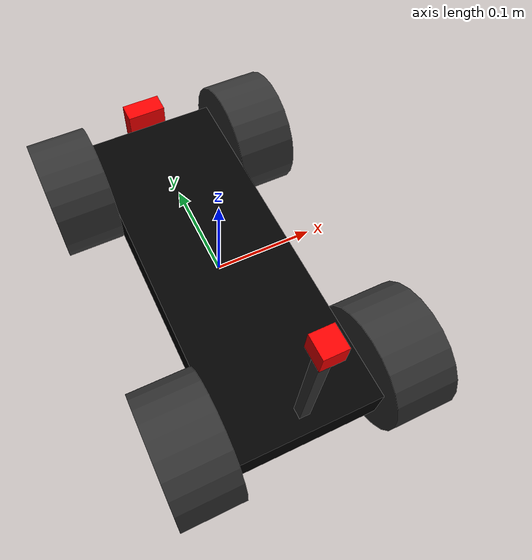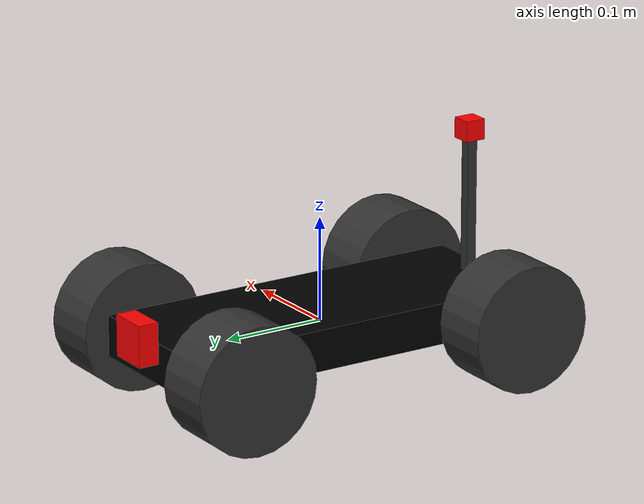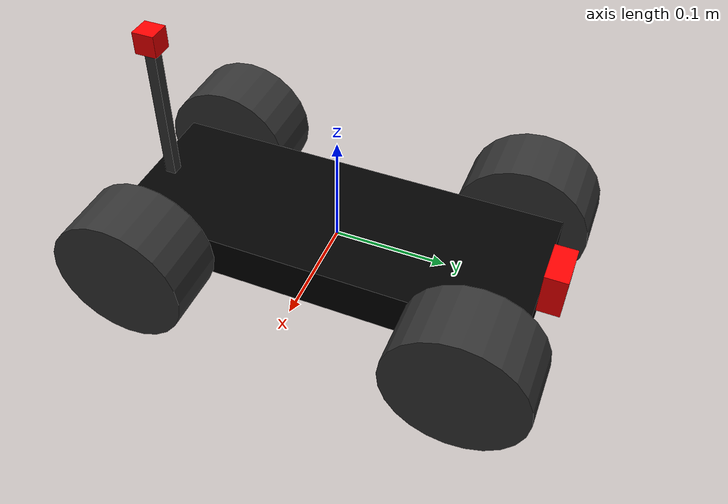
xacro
<?xml version="1.0"?>
<robot name="four_wheel" xmlns:xacro="http://www.ros.org/wiki/xacro">

  <xacro:property name="PI" value="3.1416"/>
  <material name="black">
    <color rgba="0 0 0 1"/>
  </material>
  <material name="dark">
    <color rgba="0.2 0.2 0.2 1"/>
  </material>
  <material name="red">
    <color rgba="1.0 0.0 0.0 1.0"/>
  </material>

  <xacro:property name="base_width" value="0.14"/>
  <xacro:property name="base_length" value="0.37"/>
  <xacro:property name="base_height" value="0.0395"/>

  <xacro:property name="wheel_radius" value="${0.122/2}"/>
  <xacro:property name="wheel_width" value="0.06"/>

  <xacro:include filename="four_wheels.gazebo"/>

  <link name="base_link">
    <xacro:property name="mass" value="0.9"/>
    <xacro:property name="depth" value="0.37"/>
    <xacro:property name="height" value="0.0395"/> -->
    <visual>
      <geometry>
        <box size="${base_width} ${base_length} ${base_height}"/>
      </geometry>
      <material name="black"/>
    </visual>
    <collision>
      <geometry>
        <box size="${base_width} ${base_length} ${base_height}"/>
      </geometry>
    </collision>
    <inertial>
      <mass value="${mass}"/>
      <inertia ixx="${1/12 * mass * (base_height**2 + base_length**2)}" ixy="0.0" ixz="0.0"
                    iyy="${1/12 * mass * (base_width**2 + base_height**2)}" iyz="0.0"
                         izz="${1/12 * mass * (base_width**2 + base_length**2)}"/>
      <origin xyz="0 0 0" rpy="0 0 0" />
    </inertial>
  </link>

  <xacro:macro name="insertWheel" params="posName *origin">
    <xacro:property name="mass" value="0.25"/>
    <link name="wheel${posName}">
      <visual>
        <geometry>
          <cylinder length="${wheel_width}" radius="${wheel_radius}"/>
        </geometry>
        <origin xyz="0 0 0 " rpy="0 ${PI/2} 0" />
        <material name="dark"/>
      </visual>
      <collision>
        <geometry>
          <cylinder length="${wheel_width}" radius="${wheel_radius}"/>
        </geometry>
        <origin xyz="0 0 0" rpy="0 ${PI/2} 0" />
      </collision>
      <inertial>
        <mass value="${mass}"/>
        <inertia ixx="${1/12 * mass * (3*wheel_radius**2 + wheel_width**2)}" ixy="0.0" ixz="0.0"
                      iyy="${1/12 * mass * (3*wheel_radius**2 + wheel_width**2)}" iyz="0.0"
                           izz="${1/2 * mass * wheel_radius**2}"/>
        <origin xyz="0 0 0" rpy="0 ${PI/2} 0" />
      </inertial>
    </link>
    <joint name="baseToWheel${posName}" type="continuous">
      <parent link="base_link"/>
      <child link="wheel${posName}"/>
      <xacro:insert_block name="origin"/>
      <dynamics friction="0.0001" damping="0.00005"/>
    </joint>
  </xacro:macro>

  <xacro:insertWheel posName="FrontRight">
    <origin xyz="${base_width/2.0 + wheel_width/2.0} ${base_length*0.8/2} 0" rpy="0 0 ${PI}"/>
  </xacro:insertWheel>

  <xacro:insertWheel posName="FrontLeft">
    <origin xyz="${-(base_width/2.0 + wheel_width/2.0)} ${base_length*0.8/2} 0" rpy="0 0 ${PI}"/>
  </xacro:insertWheel>

  <xacro:insertWheel posName="RearRight">
    <origin xyz="${base_width/2.0 + wheel_width/2.0} ${-base_length*0.8/2} 0" rpy="0 0 ${PI}"/>
  </xacro:insertWheel>

  <xacro:insertWheel posName="RearLeft">
    <origin xyz="${-(base_width/2.0 + wheel_width/2.0)} ${-base_length*0.8/2} 0" rpy="0 0 ${PI}"/>
  </xacro:insertWheel>

  <xacro:property name="camera_size" value="0.02" />
  <link name="front_camera">
    <collision>
      <origin xyz="0 0 0" rpy="0 0 0"/>
      <geometry>
    <box size="${camera_size} ${camera_size} ${camera_size}"/>
      </geometry>
    </collision>

    <visual>
      <origin xyz="0 0 0" rpy="0 0 0"/>
      <geometry>
    <box size="${camera_size} ${2*camera_size} ${2*camera_size}"/>
      </geometry>
      <material name="red"/>
    </visual>

    <inertial>
      <mass value="1e-5"/>
      <origin xyz="0 0 0" rpy="0 0 0"/>
      <inertia ixx="1e-6" ixy="0" ixz="0" iyy="1e-6" iyz="0" izz="1e-6" />
    </inertial>
  </link>

  <joint name="front_camera_joint" type="fixed">
    <axis xyz="0 1 0"/>
    <origin xyz="0 ${base_length/2 + camera_size/2} ${base_height/2}" rpy="${PI} 0 ${PI/2}"/>
    <parent link="base_link"/>
    <child link="front_camera"/>
  </joint>

  <link name="camera2_link">
    <collision>
      <origin xyz="0 0 0" rpy="0 0 0"/>
      <geometry>
    <box size="${camera_size} ${camera_size} ${camera_size}"/>
      </geometry>
    </collision>

    <visual>
      <origin xyz="0 0 0" rpy="0 0 0"/>
      <geometry>
    <box size="${camera_size} ${camera_size} ${camera_size}"/>
      </geometry>
      <material name="red"/>
    </visual>

    <inertial>
      <mass value="1e-5"/>
      <origin xyz="0 0 0" rpy="0 0 0"/>
      <inertia ixx="1e-6" ixy="0" ixz="0" iyy="1e-6" iyz="0" izz="1e-6" />
    </inertial>
  </link>

  <joint name="camera2_joint" type="fixed">
    <origin xyz="0 -${(base_length/2.0)*0.9} ${base_height*4}" rpy="0 0 ${PI/2}"/>
    <parent link="base_link"/>
    <child link="camera2_link"/>
  </joint>

  <link name="camera2_rod">
    <collision>
      <origin xyz="0 0 0" rpy="0 0 0"/>
      <geometry>
        <box size="${camera_size/4.0} ${camera_size/4.0} ${base_height*4}"/>
      </geometry>
    </collision>

    <visual>
      <origin xyz="0 0 0" rpy="0 0 0"/>
      <geometry>
        <box size="${camera_size/2.0} ${camera_size/2.0} ${base_height*4}"/>
      </geometry>
      <material name="dark"/>
    </visual>

    <inertial>
      <mass value="1e-5"/>
      <origin xyz="0 0 0" rpy="0 0 0"/>
      <inertia ixx="1e-6" ixy="0" ixz="0" iyy="1e-6" iyz="0" izz="1e-6" />
    </inertial>
  </link>

  <joint name="camera2_rod_joint" type="fixed">
    <origin xyz="0 -${(base_length/2.0)*0.9} ${base_height*2}" rpy="0 0 ${PI/2}"/>
    <parent link="base_link"/>
    <child link="camera2_rod"/>
  </joint>

</robot>
